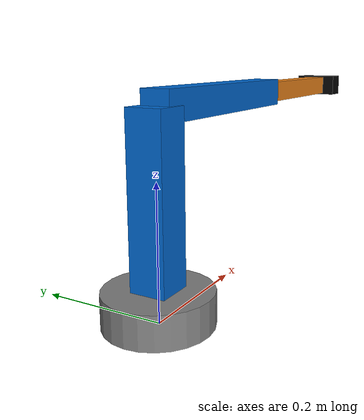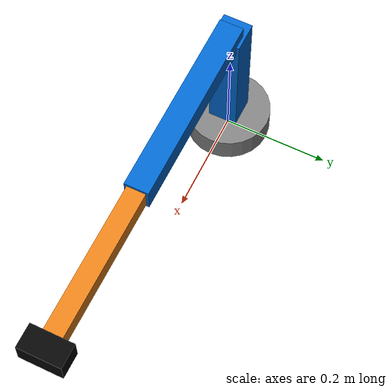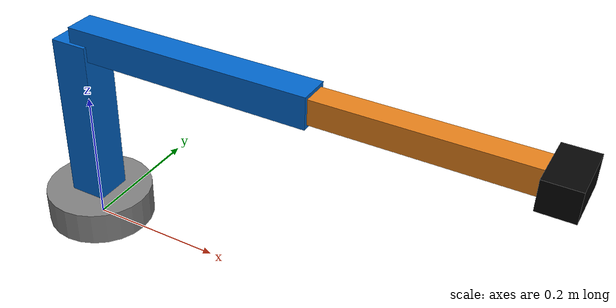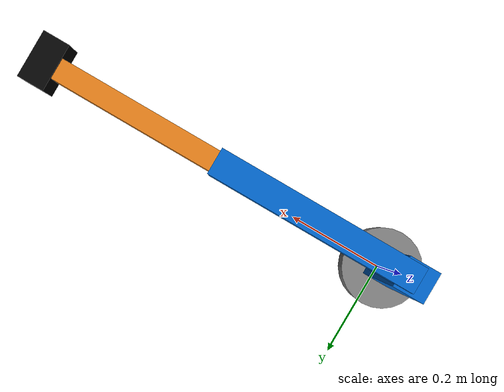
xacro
<?xml version="1.0"?>
<robot name="roboarm" xmlns:xacro="http://www.ros.org/wiki/xacro">

  <material name="blue">
    <color rgba="0.0 0.4 0.8 1.0"/>
  </material>
  <material name="grey">
    <color rgba="0.5 0.5 0.5 1.0"/>
  </material>
  <material name="orange">
    <color rgba="0.9 0.5 0.1 1.0"/>
  </material>
  <material name="black">
    <color rgba="0.02 0.02 0.02 1.0"/>
  </material>

  <link name="base_footprint"/>

  <joint name="base_footprint_joint" type="fixed">
    <parent link="base_footprint"/>
    <child link="base_link"/>
    <origin xyz="0 0 0.025" rpy="0 0 0"/>
  </joint>

  <!-- BASE -->
  <link name="base_link">
    <visual>
      <geometry><cylinder radius="0.08" length="0.05"/></geometry>
      <material name="grey"/>
    </visual>
    <collision>
      <geometry><cylinder radius="0.08" length="0.05"/></geometry>
    </collision>
    <inertial>
      <mass value="1.0"/>
      <inertia ixx="0.01" ixy="0" ixz="0"
               iyy="0.01" iyz="0" izz="0.01"/>
    </inertial>
  </link>

  <!-- JOINT 1: Base Rotation -->
  <joint name="base_joint" type="revolute">
    <parent link="base_link"/>
    <child  link="link1"/>
    <origin xyz="0 0 0.025" rpy="0 0 0"/>
    <axis xyz="0 0 1"/>
    <limit lower="-3.14" upper="3.14" effort="10" velocity="1.0"/>
  </joint>

  <!-- LINK 1: Shoulder post -->
  <link name="link1">
    <visual>
      <origin xyz="0 0 0.125" rpy="0 0 0"/>
      <geometry><box size="0.055 0.055 0.25"/></geometry>
      <material name="blue"/>
    </visual>
    <collision>
      <origin xyz="0 0 0.125" rpy="0 0 0"/>
      <geometry><box size="0.055 0.055 0.25"/></geometry>
    </collision>
    <inertial>
      <origin xyz="0 0 0.125" rpy="0 0 0"/>
      <mass value="0.5"/>
      <inertia ixx="0.005" ixy="0" ixz="0"
               iyy="0.005" iyz="0" izz="0.001"/>
    </inertial>
  </link>

  <!-- JOINT 2: Shoulder -->
  <joint name="shoulder_joint" type="revolute">
    <parent link="link1"/>
    <child  link="link2"/>
    <origin xyz="0 0 0.25" rpy="0 0 0"/>
    <axis xyz="0 1 0"/>
    <limit lower="-1.57" upper="1.57" effort="10" velocity="1.0"/>
  </joint>

  <!-- LINK 2: Upper Arm -->
  <link name="link2">
    <visual>
      <origin xyz="0.18 0 0" rpy="0 0 0"/>
      <geometry><box size="0.36 0.045 0.045"/></geometry>
      <material name="blue"/>
    </visual>
    <collision>
      <origin xyz="0.18 0 0" rpy="0 0 0"/>
      <geometry><box size="0.36 0.045 0.045"/></geometry>
    </collision>
    <inertial>
      <origin xyz="0.18 0 0" rpy="0 0 0"/>
      <mass value="0.3"/>
      <inertia ixx="0.003" ixy="0" ixz="0"
               iyy="0.003" iyz="0" izz="0.001"/>
    </inertial>
  </link>

  <!-- JOINT 3: Elbow -->
  <joint name="elbow_joint" type="revolute">
    <parent link="link2"/>
    <child  link="link3"/>
    <origin xyz="0.36 0 0" rpy="0 0 0"/>
    <axis xyz="0 1 0"/>
    <limit lower="-1.57" upper="1.57" effort="10" velocity="1.0"/>
  </joint>

  <!-- LINK 3: Forearm -->
  <link name="link3">
    <visual>
      <origin xyz="0.14 0 0" rpy="0 0 0"/>
      <geometry><box size="0.28 0.035 0.035"/></geometry>
      <material name="orange"/>
    </visual>
    <visual>
      <origin xyz="0.3 0 0" rpy="0 0 0"/>
      <geometry><box size="0.045 0.08 0.04"/></geometry>
      <material name="black"/>
    </visual>
    <collision>
      <origin xyz="0.14 0 0" rpy="0 0 0"/>
      <geometry><box size="0.28 0.035 0.035"/></geometry>
    </collision>
    <inertial>
      <origin xyz="0.14 0 0" rpy="0 0 0"/>
      <mass value="0.2"/>
      <inertia ixx="0.001" ixy="0" ixz="0"
               iyy="0.001" iyz="0" izz="0.0005"/>
    </inertial>
  </link>

  <gazebo>
    <plugin
      filename="gz-sim-joint-position-controller-system"
      name="gz::sim::systems::JointPositionController">
      <joint_name>base_joint</joint_name>
      <p_gain>8.0</p_gain>
      <i_gain>0.0</i_gain>
      <d_gain>0.5</d_gain>
    </plugin>
  </gazebo>

  <gazebo>
    <plugin
      filename="gz-sim-joint-position-controller-system"
      name="gz::sim::systems::JointPositionController">
      <joint_name>shoulder_joint</joint_name>
      <p_gain>12.0</p_gain>
      <i_gain>0.0</i_gain>
      <d_gain>0.7</d_gain>
    </plugin>
  </gazebo>

  <gazebo>
    <plugin
      filename="gz-sim-joint-position-controller-system"
      name="gz::sim::systems::JointPositionController">
      <joint_name>elbow_joint</joint_name>
      <p_gain>10.0</p_gain>
      <i_gain>0.0</i_gain>
      <d_gain>0.5</d_gain>
    </plugin>
  </gazebo>

</robot>
